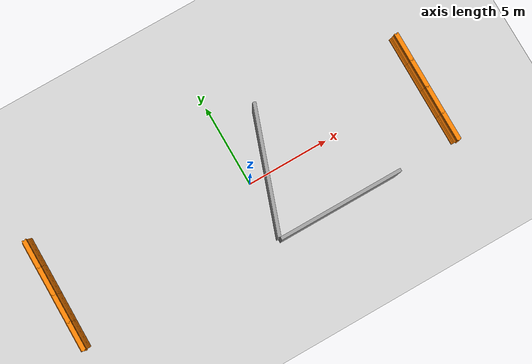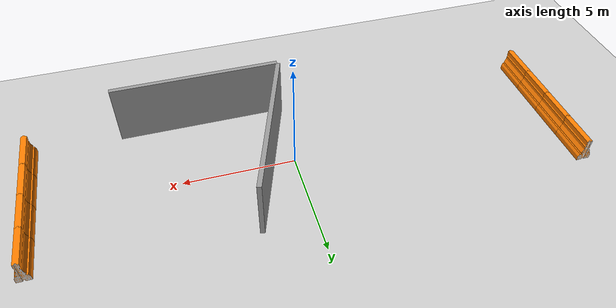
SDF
<sdf version="1.6">
 <world name="default">
  <light name="sun" type="directional">
   <pose>0 0 10 0 -0 0</pose>
   <diffuse>0.8 0.8 0.8 1</diffuse>
   <specular>0.2 0.2 0.2 1</specular>
   <attenuation>
    <range>1000</range>
    <constant>0.9</constant>
    <linear>0.01</linear>
    <quadratic>0.001</quadratic>
   </attenuation>
   <direction>-0.5 0.1 -0.9</direction>
  </light>
  <model name="ground_plane">
   <static>1</static>
   <link name="link">
    <collision name="collision">
     <geometry><plane><normal>0 0 1</normal><size>100 100</size></plane></geometry>
     <surface>
      <contact><collide_bitmask>65535</collide_bitmask></contact>
      <friction><ode><mu>100</mu><mu2>50</mu2></ode></friction>
     </surface>
    </collision>
    <visual name="visual">
     <cast_shadows>0</cast_shadows>
     <geometry><plane><normal>0 0 1</normal><size>100 100</size></plane></geometry>
     <material>
      <script><uri>file://media/materials/scripts/gazebo.material</uri><name>Gazebo/Grey</name></script>
     </material>
    </visual>
   </link>
  </model>
  <physics name="default_physics" default="0" type="ode">
   <ode>
    <solver>
     <type>quick</type>
     <iters>10</iters>
     <sor>1.3</sor>
     <use_dynamic_moi_rescaling>0</use_dynamic_moi_rescaling>
    </solver>
    <constraints>
     <cfm>0</cfm>
     <erp>0.2</erp>
     <contact_max_correcting_vel>100</contact_max_correcting_vel>
     <contact_surface_layer>0.001</contact_surface_layer>
    </constraints>
   </ode>
   <max_step_size>0.004</max_step_size>
   <real_time_factor>1</real_time_factor>
   <real_time_update_rate>250</real_time_update_rate>
  </physics>
  <gravity>0 0 -9.8066</gravity>
  <magnetic_field>6e-06 2.3e-05 -4.2e-05</magnetic_field>
  <atmosphere type="adiabatic"/>
  <scene><ambient>0.4 0.4 0.4 1</ambient><background>0.7 0.7 0.7 1</background><shadows>1</shadows></scene>
  <spherical_coordinates>
   <surface_model>EARTH_WGS84</surface_model>
   <latitude_deg>0</latitude_deg>
   <longitude_deg>0</longitude_deg>
   <elevation>0</elevation>
   <heading_deg>0</heading_deg>
  </spherical_coordinates>
  <model name="drc_practice_organge_jersey_barrier_1_clone_0">
   <static>1</static>
   <link name="link">
    <visual name="visual">
     <geometry>
      <mesh><uri>model://drc_practice_orange_jersey_barrier/meshes/jersey_barrier.dae</uri></mesh>
     </geometry>
    </visual>
    <collision name="collision">
     <geometry>
      <mesh><uri>model://drc_practice_orange_jersey_barrier/meshes/jersey_barrier.dae</uri></mesh>
     </geometry>
    </collision>
   </link>
   <pose>11.3832 2.3441 -0.007277 0 -0 0</pose>
  </model>
  <model name="drc_practice_organge_jersey_barrier_1_clone_1">
   <static>1</static>
   <link name="link">
    <visual name="visual">
     <geometry>
      <mesh><uri>model://drc_practice_orange_jersey_barrier/meshes/jersey_barrier.dae</uri></mesh>
     </geometry>
    </visual>
    <collision name="collision">
     <geometry>
      <mesh><uri>model://drc_practice_orange_jersey_barrier/meshes/jersey_barrier.dae</uri></mesh>
     </geometry>
    </collision>
   </link>
   <pose>11.3755 0.604007 -0.007277 0 -0 0</pose>
  </model>
  <model name="drc_practice_organge_jersey_barrier_1_clone_2">
   <static>1</static>
   <link name="link">
    <visual name="visual">
     <geometry>
      <mesh><uri>model://drc_practice_orange_jersey_barrier/meshes/jersey_barrier.dae</uri></mesh>
     </geometry>
    </visual>
    <collision name="collision">
     <geometry>
      <mesh><uri>model://drc_practice_orange_jersey_barrier/meshes/jersey_barrier.dae</uri></mesh>
     </geometry>
    </collision>
   </link>
   <pose>11.3672 -1.1249 -0.007277 0 -0 0</pose>
  </model>
  <model name="drc_practice_organge_jersey_barrier_1_clone_3">
   <static>1</static>
   <link name="link">
    <visual name="visual">
     <geometry>
      <mesh><uri>model://drc_practice_orange_jersey_barrier/meshes/jersey_barrier.dae</uri></mesh>
     </geometry>
    </visual>
    <collision name="collision">
     <geometry>
      <mesh><uri>model://drc_practice_orange_jersey_barrier/meshes/jersey_barrier.dae</uri></mesh>
     </geometry>
    </collision>
   </link>
   <pose>11.3619 -2.86431 -0.007277 0 -0 0</pose>
  </model>
  <model name="drc_practice_organge_jersey_barrier_1_clone_3_clone">
   <static>1</static>
   <link name="link">
    <visual name="visual">
     <geometry>
      <mesh><uri>model://drc_practice_orange_jersey_barrier/meshes/jersey_barrier.dae</uri></mesh>
     </geometry>
    </visual>
    <collision name="collision">
     <geometry>
      <mesh><uri>model://drc_practice_orange_jersey_barrier/meshes/jersey_barrier.dae</uri></mesh>
     </geometry>
    </collision>
   </link>
   <pose>-12.4631 2.55513 -0.007277 0 -0 0</pose>
  </model>
  <model name="drc_practice_organge_jersey_barrier_1_clone_3_clone_0">
   <static>1</static>
   <link name="link">
    <visual name="visual">
     <geometry>
      <mesh><uri>model://drc_practice_orange_jersey_barrier/meshes/jersey_barrier.dae</uri></mesh>
     </geometry>
    </visual>
    <collision name="collision">
     <geometry>
      <mesh><uri>model://drc_practice_orange_jersey_barrier/meshes/jersey_barrier.dae</uri></mesh>
     </geometry>
    </collision>
   </link>
   <pose>-12.4694 0.828783 -0.007277 0 -0 0</pose>
  </model>
  <model name="drc_practice_organge_jersey_barrier_1_clone_3_clone_1">
   <static>1</static>
   <link name="link">
    <visual name="visual">
     <geometry>
      <mesh><uri>model://drc_practice_orange_jersey_barrier/meshes/jersey_barrier.dae</uri></mesh>
     </geometry>
    </visual>
    <collision name="collision">
     <geometry>
      <mesh><uri>model://drc_practice_orange_jersey_barrier/meshes/jersey_barrier.dae</uri></mesh>
     </geometry>
    </collision>
   </link>
   <pose>-12.4809 -0.897501 -0.007277 0 -0 0</pose>
  </model>
  <model name="drc_practice_organge_jersey_barrier_1_clone_3_clone_2">
   <static>1</static>
   <link name="link">
    <visual name="visual">
     <geometry>
      <mesh><uri>model://drc_practice_orange_jersey_barrier/meshes/jersey_barrier.dae</uri></mesh>
     </geometry>
    </visual>
    <collision name="collision">
     <geometry>
      <mesh><uri>model://drc_practice_orange_jersey_barrier/meshes/jersey_barrier.dae</uri></mesh>
     </geometry>
    </collision>
   </link>
   <pose>-12.4928 -2.61817 -0.007277 0 -0 0</pose>
  </model>
  <model name="grey_wall">
   <static>1</static>
   <link name="link">
    <pose>0 0 1.4 0 -0 0</pose>
    <collision name="collision"><geometry><box><size>7.5 0.2 2.8</size></box></geometry></collision>
    <visual name="visual">
     <cast_shadows>0</cast_shadows>
     <geometry><box><size>7.5 0.2 2.8</size></box></geometry>
     <material>
      <script>
       <uri>model://grey_wall/materials/scripts</uri>
       <uri>model://grey_wall/materials/textures</uri>
       <name>vrc/grey_wall</name>
      </script>
     </material>
    </visual>
   </link>
   <pose>1.04128 -0.009543 0 0 0 -1.91073</pose>
  </model>
  <model name="grey_wall_0">
   <static>1</static>
   <link name="link">
    <pose>0 0 1.4 0 -0 0</pose>
    <collision name="collision"><geometry><box><size>7.5 0.2 2.8</size></box></geometry></collision>
    <visual name="visual">
     <cast_shadows>0</cast_shadows>
     <geometry><box><size>7.5 0.2 2.8</size></box></geometry>
     <material>
      <script>
       <uri>model://grey_wall/materials/scripts</uri>
       <uri>model://grey_wall/materials/textures</uri>
       <name>vrc/grey_wall</name>
      </script>
     </material>
    </visual>
   </link>
   <pose>3.5756 -3.64649 0 0 -0 0</pose>
  </model>
 </world>
</sdf>
